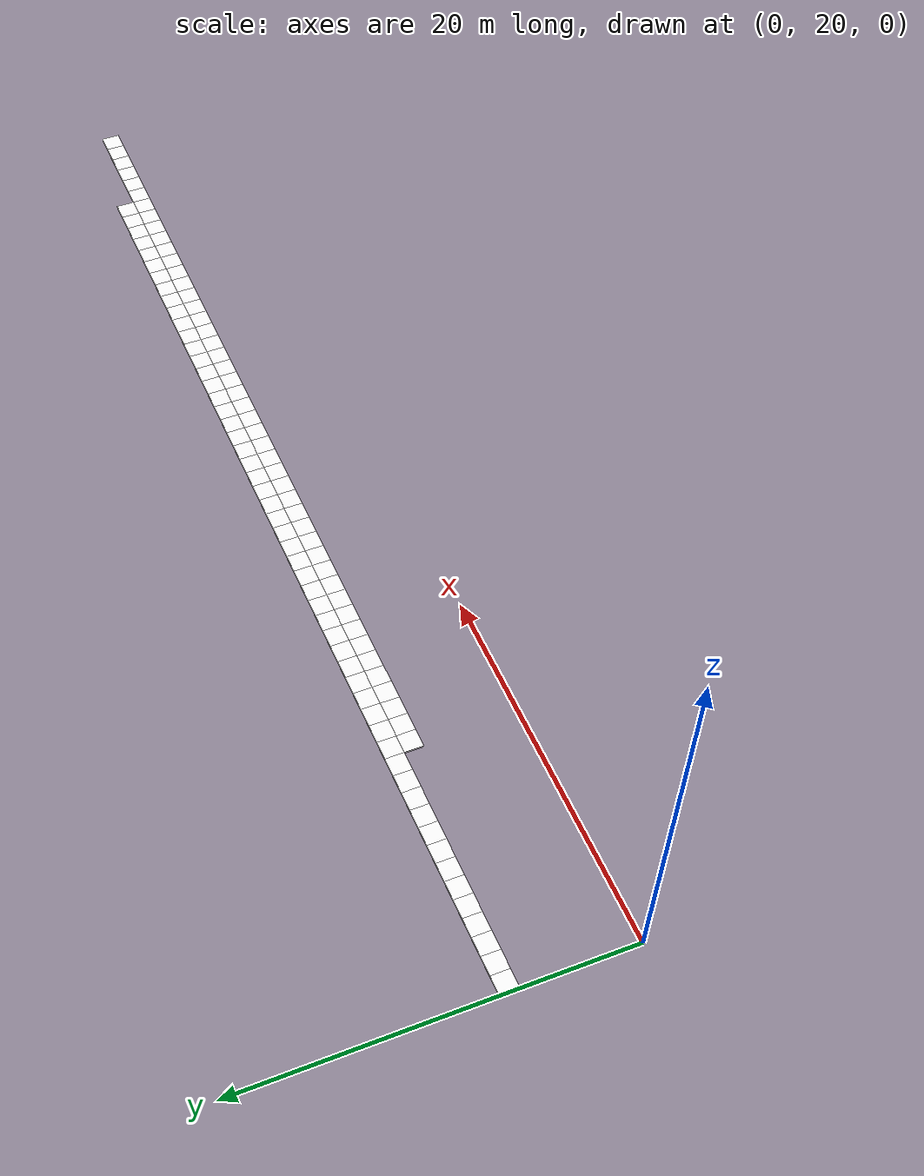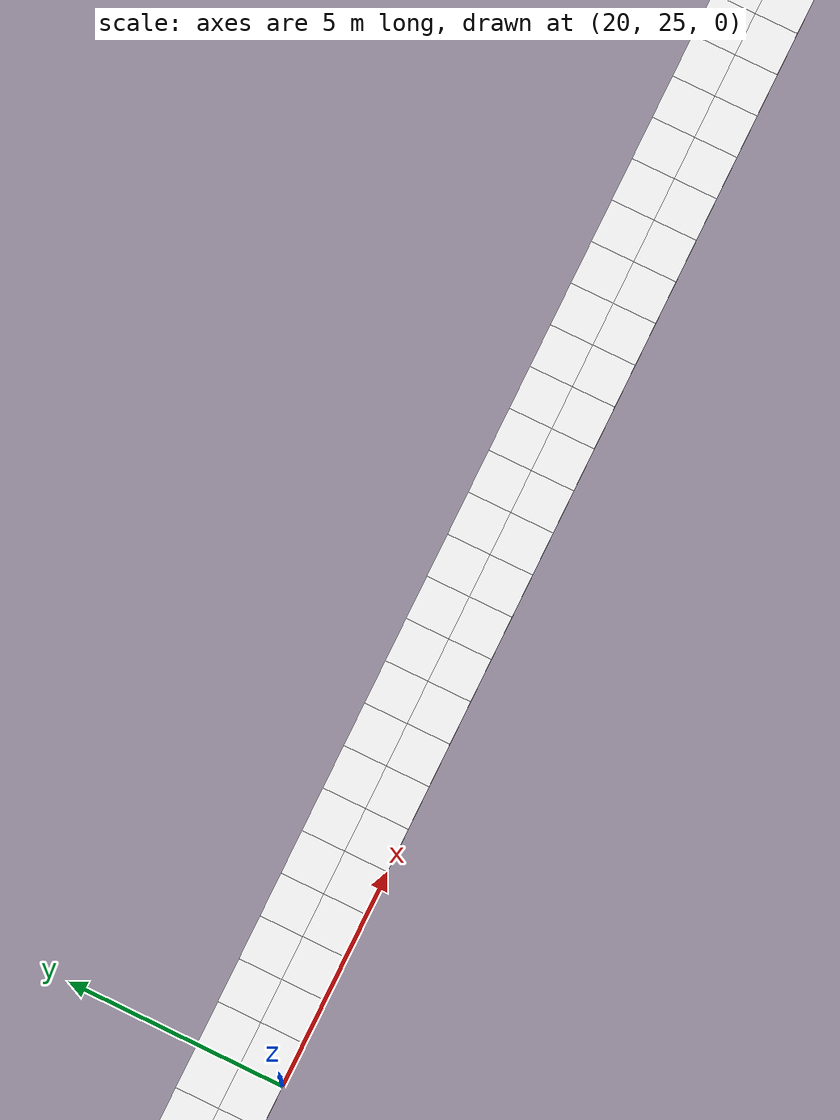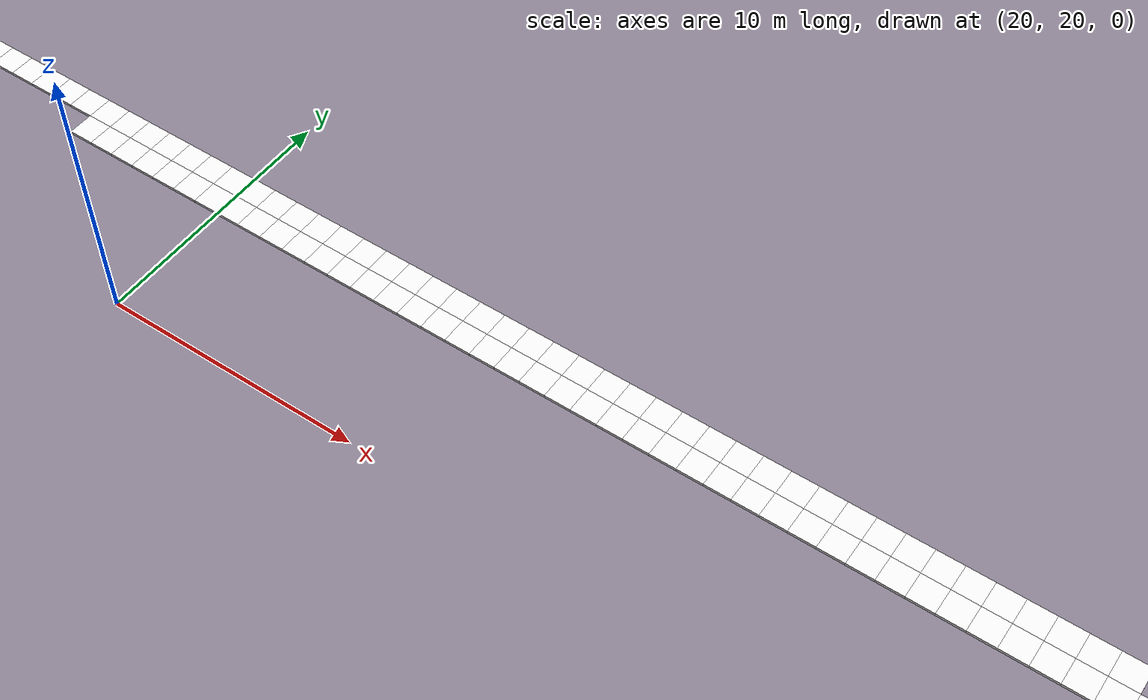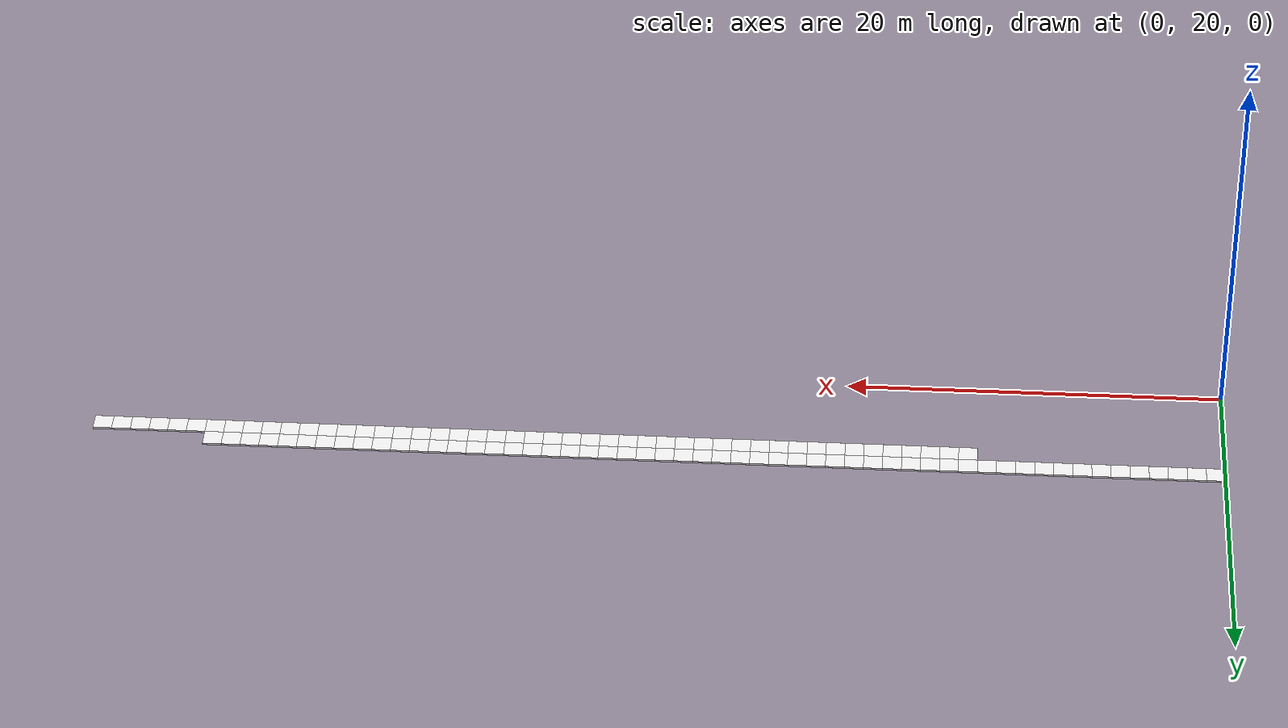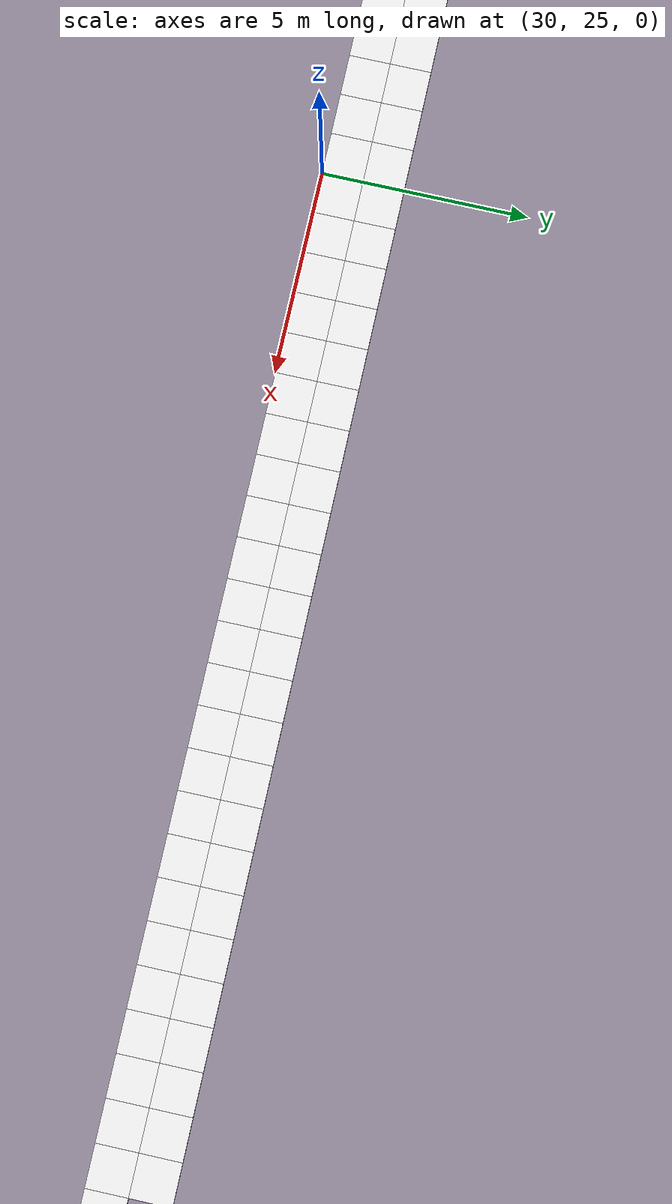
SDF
<sdf version="1.6">
 <world name="grid_world">
  <model name="cell_13_25">
   <static>true</static>
   <link name="link">
    <collision name="collision"><geometry><box><size>1 1 0.1</size></box></geometry></collision>
    <visual name="visual">
     <geometry><box><size>1 1 0.1</size></box></geometry>
     <material>
      <script><uri>file://media/materials/scripts/gazebo.material</uri><name>Gazebo/White</name></script>
     </material>
    </visual>
    <pose>13.5 25.5 0.05 0 0 0</pose>
   </link>
  </model>
  <model name="cell_14_25">
   <static>true</static>
   <link name="link">
    <collision name="collision"><geometry><box><size>1 1 0.1</size></box></geometry></collision>
    <visual name="visual">
     <geometry><box><size>1 1 0.1</size></box></geometry>
     <material>
      <script><uri>file://media/materials/scripts/gazebo.material</uri><name>Gazebo/White</name></script>
     </material>
    </visual>
    <pose>14.5 25.5 0.05 0 0 0</pose>
   </link>
  </model>
  <model name="cell_15_25">
   <static>true</static>
   <link name="link">
    <collision name="collision"><geometry><box><size>1 1 0.1</size></box></geometry></collision>
    <visual name="visual">
     <geometry><box><size>1 1 0.1</size></box></geometry>
     <material>
      <script><uri>file://media/materials/scripts/gazebo.material</uri><name>Gazebo/White</name></script>
     </material>
    </visual>
    <pose>15.5 25.5 0.05 0 0 0</pose>
   </link>
  </model>
  <model name="cell_16_25">
   <static>true</static>
   <link name="link">
    <collision name="collision"><geometry><box><size>1 1 0.1</size></box></geometry></collision>
    <visual name="visual">
     <geometry><box><size>1 1 0.1</size></box></geometry>
     <material>
      <script><uri>file://media/materials/scripts/gazebo.material</uri><name>Gazebo/White</name></script>
     </material>
    </visual>
    <pose>16.5 25.5 0.05 0 0 0</pose>
   </link>
  </model>
  <model name="cell_17_25">
   <static>true</static>
   <link name="link">
    <collision name="collision"><geometry><box><size>1 1 0.1</size></box></geometry></collision>
    <visual name="visual">
     <geometry><box><size>1 1 0.1</size></box></geometry>
     <material>
      <script><uri>file://media/materials/scripts/gazebo.material</uri><name>Gazebo/White</name></script>
     </material>
    </visual>
    <pose>17.5 25.5 0.05 0 0 0</pose>
   </link>
  </model>
  <model name="cell_18_25">
   <static>true</static>
   <link name="link">
    <collision name="collision"><geometry><box><size>1 1 0.1</size></box></geometry></collision>
    <visual name="visual">
     <geometry><box><size>1 1 0.1</size></box></geometry>
     <material>
      <script><uri>file://media/materials/scripts/gazebo.material</uri><name>Gazebo/White</name></script>
     </material>
    </visual>
    <pose>18.5 25.5 0.05 0 0 0</pose>
   </link>
  </model>
  <model name="cell_19_25">
   <static>true</static>
   <link name="link">
    <collision name="collision"><geometry><box><size>1 1 0.1</size></box></geometry></collision>
    <visual name="visual">
     <geometry><box><size>1 1 0.1</size></box></geometry>
     <material>
      <script><uri>file://media/materials/scripts/gazebo.material</uri><name>Gazebo/White</name></script>
     </material>
    </visual>
    <pose>19.5 25.5 0.05 0 0 0</pose>
   </link>
  </model>
  <model name="cell_20_25">
   <static>true</static>
   <link name="link">
    <collision name="collision"><geometry><box><size>1 1 0.1</size></box></geometry></collision>
    <visual name="visual">
     <geometry><box><size>1 1 0.1</size></box></geometry>
     <material>
      <script><uri>file://media/materials/scripts/gazebo.material</uri><name>Gazebo/White</name></script>
     </material>
    </visual>
    <pose>20.5 25.5 0.05 0 0 0</pose>
   </link>
  </model>
  <model name="cell_21_25">
   <static>true</static>
   <link name="link">
    <collision name="collision"><geometry><box><size>1 1 0.1</size></box></geometry></collision>
    <visual name="visual">
     <geometry><box><size>1 1 0.1</size></box></geometry>
     <material>
      <script><uri>file://media/materials/scripts/gazebo.material</uri><name>Gazebo/White</name></script>
     </material>
    </visual>
    <pose>21.5 25.5 0.05 0 0 0</pose>
   </link>
  </model>
  <model name="cell_22_25">
   <static>true</static>
   <link name="link">
    <collision name="collision"><geometry><box><size>1 1 0.1</size></box></geometry></collision>
    <visual name="visual">
     <geometry><box><size>1 1 0.1</size></box></geometry>
     <material>
      <script><uri>file://media/materials/scripts/gazebo.material</uri><name>Gazebo/White</name></script>
     </material>
    </visual>
    <pose>22.5 25.5 0.05 0 0 0</pose>
   </link>
  </model>
  <model name="cell_23_25">
   <static>true</static>
   <link name="link">
    <collision name="collision"><geometry><box><size>1 1 0.1</size></box></geometry></collision>
    <visual name="visual">
     <geometry><box><size>1 1 0.1</size></box></geometry>
     <material>
      <script><uri>file://media/materials/scripts/gazebo.material</uri><name>Gazebo/White</name></script>
     </material>
    </visual>
    <pose>23.5 25.5 0.05 0 0 0</pose>
   </link>
  </model>
  <model name="cell_24_25">
   <static>true</static>
   <link name="link">
    <collision name="collision"><geometry><box><size>1 1 0.1</size></box></geometry></collision>
    <visual name="visual">
     <geometry><box><size>1 1 0.1</size></box></geometry>
     <material>
      <script><uri>file://media/materials/scripts/gazebo.material</uri><name>Gazebo/White</name></script>
     </material>
    </visual>
    <pose>24.5 25.5 0.05 0 0 0</pose>
   </link>
  </model>
  <model name="cell_25_25">
   <static>true</static>
   <link name="link">
    <collision name="collision"><geometry><box><size>1 1 0.1</size></box></geometry></collision>
    <visual name="visual">
     <geometry><box><size>1 1 0.1</size></box></geometry>
     <material>
      <script><uri>file://media/materials/scripts/gazebo.material</uri><name>Gazebo/White</name></script>
     </material>
    </visual>
    <pose>25.5 25.5 0.05 0 0 0</pose>
   </link>
  </model>
  <model name="cell_26_25">
   <static>true</static>
   <link name="link">
    <collision name="collision"><geometry><box><size>1 1 0.1</size></box></geometry></collision>
    <visual name="visual">
     <geometry><box><size>1 1 0.1</size></box></geometry>
     <material>
      <script><uri>file://media/materials/scripts/gazebo.material</uri><name>Gazebo/White</name></script>
     </material>
    </visual>
    <pose>26.5 25.5 0.05 0 0 0</pose>
   </link>
  </model>
  <model name="cell_27_25">
   <static>true</static>
   <link name="link">
    <collision name="collision"><geometry><box><size>1 1 0.1</size></box></geometry></collision>
    <visual name="visual">
     <geometry><box><size>1 1 0.1</size></box></geometry>
     <material>
      <script><uri>file://media/materials/scripts/gazebo.material</uri><name>Gazebo/White</name></script>
     </material>
    </visual>
    <pose>27.5 25.5 0.05 0 0 0</pose>
   </link>
  </model>
  <model name="cell_28_25">
   <static>true</static>
   <link name="link">
    <collision name="collision"><geometry><box><size>1 1 0.1</size></box></geometry></collision>
    <visual name="visual">
     <geometry><box><size>1 1 0.1</size></box></geometry>
     <material>
      <script><uri>file://media/materials/scripts/gazebo.material</uri><name>Gazebo/White</name></script>
     </material>
    </visual>
    <pose>28.5 25.5 0.05 0 0 0</pose>
   </link>
  </model>
  <model name="cell_29_25">
   <static>true</static>
   <link name="link">
    <collision name="collision"><geometry><box><size>1 1 0.1</size></box></geometry></collision>
    <visual name="visual">
     <geometry><box><size>1 1 0.1</size></box></geometry>
     <material>
      <script><uri>file://media/materials/scripts/gazebo.material</uri><name>Gazebo/White</name></script>
     </material>
    </visual>
    <pose>29.5 25.5 0.05 0 0 0</pose>
   </link>
  </model>
  <model name="cell_30_25">
   <static>true</static>
   <link name="link">
    <collision name="collision"><geometry><box><size>1 1 0.1</size></box></geometry></collision>
    <visual name="visual">
     <geometry><box><size>1 1 0.1</size></box></geometry>
     <material>
      <script><uri>file://media/materials/scripts/gazebo.material</uri><name>Gazebo/White</name></script>
     </material>
    </visual>
    <pose>30.5 25.5 0.05 0 0 0</pose>
   </link>
  </model>
  <model name="cell_31_25">
   <static>true</static>
   <link name="link">
    <collision name="collision"><geometry><box><size>1 1 0.1</size></box></geometry></collision>
    <visual name="visual">
     <geometry><box><size>1 1 0.1</size></box></geometry>
     <material>
      <script><uri>file://media/materials/scripts/gazebo.material</uri><name>Gazebo/White</name></script>
     </material>
    </visual>
    <pose>31.5 25.5 0.05 0 0 0</pose>
   </link>
  </model>
  <model name="cell_32_25">
   <static>true</static>
   <link name="link">
    <collision name="collision"><geometry><box><size>1 1 0.1</size></box></geometry></collision>
    <visual name="visual">
     <geometry><box><size>1 1 0.1</size></box></geometry>
     <material>
      <script><uri>file://media/materials/scripts/gazebo.material</uri><name>Gazebo/White</name></script>
     </material>
    </visual>
    <pose>32.5 25.5 0.05 0 0 0</pose>
   </link>
  </model>
  <model name="cell_33_25">
   <static>true</static>
   <link name="link">
    <collision name="collision"><geometry><box><size>1 1 0.1</size></box></geometry></collision>
    <visual name="visual">
     <geometry><box><size>1 1 0.1</size></box></geometry>
     <material>
      <script><uri>file://media/materials/scripts/gazebo.material</uri><name>Gazebo/White</name></script>
     </material>
    </visual>
    <pose>33.5 25.5 0.05 0 0 0</pose>
   </link>
  </model>
  <model name="cell_34_25">
   <static>true</static>
   <link name="link">
    <collision name="collision"><geometry><box><size>1 1 0.1</size></box></geometry></collision>
    <visual name="visual">
     <geometry><box><size>1 1 0.1</size></box></geometry>
     <material>
      <script><uri>file://media/materials/scripts/gazebo.material</uri><name>Gazebo/White</name></script>
     </material>
    </visual>
    <pose>34.5 25.5 0.05 0 0 0</pose>
   </link>
  </model>
  <model name="cell_35_25">
   <static>true</static>
   <link name="link">
    <collision name="collision"><geometry><box><size>1 1 0.1</size></box></geometry></collision>
    <visual name="visual">
     <geometry><box><size>1 1 0.1</size></box></geometry>
     <material>
      <script><uri>file://media/materials/scripts/gazebo.material</uri><name>Gazebo/White</name></script>
     </material>
    </visual>
    <pose>35.5 25.5 0.05 0 0 0</pose>
   </link>
  </model>
  <model name="cell_36_25">
   <static>true</static>
   <link name="link">
    <collision name="collision"><geometry><box><size>1 1 0.1</size></box></geometry></collision>
    <visual name="visual">
     <geometry><box><size>1 1 0.1</size></box></geometry>
     <material>
      <script><uri>file://media/materials/scripts/gazebo.material</uri><name>Gazebo/White</name></script>
     </material>
    </visual>
    <pose>36.5 25.5 0.05 0 0 0</pose>
   </link>
  </model>
  <model name="cell_37_25">
   <static>true</static>
   <link name="link">
    <collision name="collision"><geometry><box><size>1 1 0.1</size></box></geometry></collision>
    <visual name="visual">
     <geometry><box><size>1 1 0.1</size></box></geometry>
     <material>
      <script><uri>file://media/materials/scripts/gazebo.material</uri><name>Gazebo/White</name></script>
     </material>
    </visual>
    <pose>37.5 25.5 0.05 0 0 0</pose>
   </link>
  </model>
  <model name="cell_38_25">
   <static>true</static>
   <link name="link">
    <collision name="collision"><geometry><box><size>1 1 0.1</size></box></geometry></collision>
    <visual name="visual">
     <geometry><box><size>1 1 0.1</size></box></geometry>
     <material>
      <script><uri>file://media/materials/scripts/gazebo.material</uri><name>Gazebo/White</name></script>
     </material>
    </visual>
    <pose>38.5 25.5 0.05 0 0 0</pose>
   </link>
  </model>
  <model name="cell_39_25">
   <static>true</static>
   <link name="link">
    <collision name="collision"><geometry><box><size>1 1 0.1</size></box></geometry></collision>
    <visual name="visual">
     <geometry><box><size>1 1 0.1</size></box></geometry>
     <material>
      <script><uri>file://media/materials/scripts/gazebo.material</uri><name>Gazebo/White</name></script>
     </material>
    </visual>
    <pose>39.5 25.5 0.05 0 0 0</pose>
   </link>
  </model>
  <model name="cell_40_25">
   <static>true</static>
   <link name="link">
    <collision name="collision"><geometry><box><size>1 1 0.1</size></box></geometry></collision>
    <visual name="visual">
     <geometry><box><size>1 1 0.1</size></box></geometry>
     <material>
      <script><uri>file://media/materials/scripts/gazebo.material</uri><name>Gazebo/White</name></script>
     </material>
    </visual>
    <pose>40.5 25.5 0.05 0 0 0</pose>
   </link>
  </model>
  <model name="cell_41_25">
   <static>true</static>
   <link name="link">
    <collision name="collision"><geometry><box><size>1 1 0.1</size></box></geometry></collision>
    <visual name="visual">
     <geometry><box><size>1 1 0.1</size></box></geometry>
     <material>
      <script><uri>file://media/materials/scripts/gazebo.material</uri><name>Gazebo/White</name></script>
     </material>
    </visual>
    <pose>41.5 25.5 0.05 0 0 0</pose>
   </link>
  </model>
  <model name="cell_42_25">
   <static>true</static>
   <link name="link">
    <collision name="collision"><geometry><box><size>1 1 0.1</size></box></geometry></collision>
    <visual name="visual">
     <geometry><box><size>1 1 0.1</size></box></geometry>
     <material>
      <script><uri>file://media/materials/scripts/gazebo.material</uri><name>Gazebo/White</name></script>
     </material>
    </visual>
    <pose>42.5 25.5 0.05 0 0 0</pose>
   </link>
  </model>
  <model name="cell_43_25">
   <static>true</static>
   <link name="link">
    <collision name="collision"><geometry><box><size>1 1 0.1</size></box></geometry></collision>
    <visual name="visual">
     <geometry><box><size>1 1 0.1</size></box></geometry>
     <material>
      <script><uri>file://media/materials/scripts/gazebo.material</uri><name>Gazebo/White</name></script>
     </material>
    </visual>
    <pose>43.5 25.5 0.05 0 0 0</pose>
   </link>
  </model>
  <model name="cell_44_25">
   <static>true</static>
   <link name="link">
    <collision name="collision"><geometry><box><size>1 1 0.1</size></box></geometry></collision>
    <visual name="visual">
     <geometry><box><size>1 1 0.1</size></box></geometry>
     <material>
      <script><uri>file://media/materials/scripts/gazebo.material</uri><name>Gazebo/White</name></script>
     </material>
    </visual>
    <pose>44.5 25.5 0.05 0 0 0</pose>
   </link>
  </model>
  <model name="cell_45_25">
   <static>true</static>
   <link name="link">
    <collision name="collision"><geometry><box><size>1 1 0.1</size></box></geometry></collision>
    <visual name="visual">
     <geometry><box><size>1 1 0.1</size></box></geometry>
     <material>
      <script><uri>file://media/materials/scripts/gazebo.material</uri><name>Gazebo/White</name></script>
     </material>
    </visual>
    <pose>45.5 25.5 0.05 0 0 0</pose>
   </link>
  </model>
  <model name="cell_46_25">
   <static>true</static>
   <link name="link">
    <collision name="collision"><geometry><box><size>1 1 0.1</size></box></geometry></collision>
    <visual name="visual">
     <geometry><box><size>1 1 0.1</size></box></geometry>
     <material>
      <script><uri>file://media/materials/scripts/gazebo.material</uri><name>Gazebo/White</name></script>
     </material>
    </visual>
    <pose>46.5 25.5 0.05 0 0 0</pose>
   </link>
  </model>
  <model name="cell_47_25">
   <static>true</static>
   <link name="link">
    <collision name="collision"><geometry><box><size>1 1 0.1</size></box></geometry></collision>
    <visual name="visual">
     <geometry><box><size>1 1 0.1</size></box></geometry>
     <material>
      <script><uri>file://media/materials/scripts/gazebo.material</uri><name>Gazebo/White</name></script>
     </material>
    </visual>
    <pose>47.5 25.5 0.05 0 0 0</pose>
   </link>
  </model>
  <model name="cell_48_25">
   <static>true</static>
   <link name="link">
    <collision name="collision"><geometry><box><size>1 1 0.1</size></box></geometry></collision>
    <visual name="visual">
     <geometry><box><size>1 1 0.1</size></box></geometry>
     <material>
      <script><uri>file://media/materials/scripts/gazebo.material</uri><name>Gazebo/White</name></script>
     </material>
    </visual>
    <pose>48.5 25.5 0.05 0 0 0</pose>
   </link>
  </model>
  <model name="cell_49_25">
   <static>true</static>
   <link name="link">
    <collision name="collision"><geometry><box><size>1 1 0.1</size></box></geometry></collision>
    <visual name="visual">
     <geometry><box><size>1 1 0.1</size></box></geometry>
     <material>
      <script><uri>file://media/materials/scripts/gazebo.material</uri><name>Gazebo/White</name></script>
     </material>
    </visual>
    <pose>49.5 25.5 0.05 0 0 0</pose>
   </link>
  </model>
  <model name="cell_50_25">
   <static>true</static>
   <link name="link">
    <collision name="collision"><geometry><box><size>1 1 0.1</size></box></geometry></collision>
    <visual name="visual">
     <geometry><box><size>1 1 0.1</size></box></geometry>
     <material>
      <script><uri>file://media/materials/scripts/gazebo.material</uri><name>Gazebo/White</name></script>
     </material>
    </visual>
    <pose>50.5 25.5 0.05 0 0 0</pose>
   </link>
  </model>
  <model name="cell_51_25">
   <static>true</static>
   <link name="link">
    <collision name="collision"><geometry><box><size>1 1 0.1</size></box></geometry></collision>
    <visual name="visual">
     <geometry><box><size>1 1 0.1</size></box></geometry>
     <material>
      <script><uri>file://media/materials/scripts/gazebo.material</uri><name>Gazebo/White</name></script>
     </material>
    </visual>
    <pose>51.5 25.5 0.05 0 0 0</pose>
   </link>
  </model>
  <model name="cell_52_25">
   <static>true</static>
   <link name="link">
    <collision name="collision"><geometry><box><size>1 1 0.1</size></box></geometry></collision>
    <visual name="visual">
     <geometry><box><size>1 1 0.1</size></box></geometry>
     <material>
      <script><uri>file://media/materials/scripts/gazebo.material</uri><name>Gazebo/White</name></script>
     </material>
    </visual>
    <pose>52.5 25.5 0.05 0 0 0</pose>
   </link>
  </model>
  <model name="cell_53_25">
   <static>true</static>
   <link name="link">
    <collision name="collision"><geometry><box><size>1 1 0.1</size></box></geometry></collision>
    <visual name="visual">
     <geometry><box><size>1 1 0.1</size></box></geometry>
     <material>
      <script><uri>file://media/materials/scripts/gazebo.material</uri><name>Gazebo/White</name></script>
     </material>
    </visual>
    <pose>53.5 25.5 0.05 0 0 0</pose>
   </link>
  </model>
  <model name="cell_54_25">
   <static>true</static>
   <link name="link">
    <collision name="collision"><geometry><box><size>1 1 0.1</size></box></geometry></collision>
    <visual name="visual">
     <geometry><box><size>1 1 0.1</size></box></geometry>
     <material>
      <script><uri>file://media/materials/scripts/gazebo.material</uri><name>Gazebo/White</name></script>
     </material>
    </visual>
    <pose>54.5 25.5 0.05 0 0 0</pose>
   </link>
  </model>
  <model name="cell_55_25">
   <static>true</static>
   <link name="link">
    <collision name="collision"><geometry><box><size>1 1 0.1</size></box></geometry></collision>
    <visual name="visual">
     <geometry><box><size>1 1 0.1</size></box></geometry>
     <material>
      <script><uri>file://media/materials/scripts/gazebo.material</uri><name>Gazebo/White</name></script>
     </material>
    </visual>
    <pose>55.5 25.5 0.05 0 0 0</pose>
   </link>
  </model>
  <model name="cell_56_25">
   <static>true</static>
   <link name="link">
    <collision name="collision"><geometry><box><size>1 1 0.1</size></box></geometry></collision>
    <visual name="visual">
     <geometry><box><size>1 1 0.1</size></box></geometry>
     <material>
      <script><uri>file://media/materials/scripts/gazebo.material</uri><name>Gazebo/White</name></script>
     </material>
    </visual>
    <pose>56.5 25.5 0.05 0 0 0</pose>
   </link>
  </model>
  <model name="cell_57_25">
   <static>true</static>
   <link name="link">
    <collision name="collision"><geometry><box><size>1 1 0.1</size></box></geometry></collision>
    <visual name="visual">
     <geometry><box><size>1 1 0.1</size></box></geometry>
     <material>
      <script><uri>file://media/materials/scripts/gazebo.material</uri><name>Gazebo/White</name></script>
     </material>
    </visual>
    <pose>57.5 25.5 0.05 0 0 0</pose>
   </link>
  </model>
  <model name="cell_58_25">
   <static>true</static>
   <link name="link">
    <collision name="collision"><geometry><box><size>1 1 0.1</size></box></geometry></collision>
    <visual name="visual">
     <geometry><box><size>1 1 0.1</size></box></geometry>
     <material>
      <script><uri>file://media/materials/scripts/gazebo.material</uri><name>Gazebo/White</name></script>
     </material>
    </visual>
    <pose>58.5 25.5 0.05 0 0 0</pose>
   </link>
  </model>
  <model name="cell_59_25">
   <static>true</static>
   <link name="link">
    <collision name="collision"><geometry><box><size>1 1 0.1</size></box></geometry></collision>
    <visual name="visual">
     <geometry><box><size>1 1 0.1</size></box></geometry>
     <material>
      <script><uri>file://media/materials/scripts/gazebo.material</uri><name>Gazebo/White</name></script>
     </material>
    </visual>
    <pose>59.5 25.5 0.05 0 0 0</pose>
   </link>
  </model>
  <model name="cell_0_26">
   <static>true</static>
   <link name="link">
    <collision name="collision"><geometry><box><size>1 1 0.1</size></box></geometry></collision>
    <visual name="visual">
     <geometry><box><size>1 1 0.1</size></box></geometry>
     <material>
      <script><uri>file://media/materials/scripts/gazebo.material</uri><name>Gazebo/White</name></script>
     </material>
    </visual>
    <pose>0.5 26.5 0.05 0 0 0</pose>
   </link>
  </model>
  <model name="cell_1_26">
   <static>true</static>
   <link name="link">
    <collision name="collision"><geometry><box><size>1 1 0.1</size></box></geometry></collision>
    <visual name="visual">
     <geometry><box><size>1 1 0.1</size></box></geometry>
     <material>
      <script><uri>file://media/materials/scripts/gazebo.material</uri><name>Gazebo/White</name></script>
     </material>
    </visual>
    <pose>1.5 26.5 0.05 0 0 0</pose>
   </link>
  </model>
  <model name="cell_2_26">
   <static>true</static>
   <link name="link">
    <collision name="collision"><geometry><box><size>1 1 0.1</size></box></geometry></collision>
    <visual name="visual">
     <geometry><box><size>1 1 0.1</size></box></geometry>
     <material>
      <script><uri>file://media/materials/scripts/gazebo.material</uri><name>Gazebo/White</name></script>
     </material>
    </visual>
    <pose>2.5 26.5 0.05 0 0 0</pose>
   </link>
  </model>
  <model name="cell_3_26">
   <static>true</static>
   <link name="link">
    <collision name="collision"><geometry><box><size>1 1 0.1</size></box></geometry></collision>
    <visual name="visual">
     <geometry><box><size>1 1 0.1</size></box></geometry>
     <material>
      <script><uri>file://media/materials/scripts/gazebo.material</uri><name>Gazebo/White</name></script>
     </material>
    </visual>
    <pose>3.5 26.5 0.05 0 0 0</pose>
   </link>
  </model>
  <model name="cell_4_26">
   <static>true</static>
   <link name="link">
    <collision name="collision"><geometry><box><size>1 1 0.1</size></box></geometry></collision>
    <visual name="visual">
     <geometry><box><size>1 1 0.1</size></box></geometry>
     <material>
      <script><uri>file://media/materials/scripts/gazebo.material</uri><name>Gazebo/White</name></script>
     </material>
    </visual>
    <pose>4.5 26.5 0.05 0 0 0</pose>
   </link>
  </model>
  <model name="cell_5_26">
   <static>true</static>
   <link name="link">
    <collision name="collision"><geometry><box><size>1 1 0.1</size></box></geometry></collision>
    <visual name="visual">
     <geometry><box><size>1 1 0.1</size></box></geometry>
     <material>
      <script><uri>file://media/materials/scripts/gazebo.material</uri><name>Gazebo/White</name></script>
     </material>
    </visual>
    <pose>5.5 26.5 0.05 0 0 0</pose>
   </link>
  </model>
  <model name="cell_6_26">
   <static>true</static>
   <link name="link">
    <collision name="collision"><geometry><box><size>1 1 0.1</size></box></geometry></collision>
    <visual name="visual">
     <geometry><box><size>1 1 0.1</size></box></geometry>
     <material>
      <script><uri>file://media/materials/scripts/gazebo.material</uri><name>Gazebo/White</name></script>
     </material>
    </visual>
    <pose>6.5 26.5 0.05 0 0 0</pose>
   </link>
  </model>
  <model name="cell_7_26">
   <static>true</static>
   <link name="link">
    <collision name="collision"><geometry><box><size>1 1 0.1</size></box></geometry></collision>
    <visual name="visual">
     <geometry><box><size>1 1 0.1</size></box></geometry>
     <material>
      <script><uri>file://media/materials/scripts/gazebo.material</uri><name>Gazebo/White</name></script>
     </material>
    </visual>
    <pose>7.5 26.5 0.05 0 0 0</pose>
   </link>
  </model>
  <model name="cell_8_26">
   <static>true</static>
   <link name="link">
    <collision name="collision"><geometry><box><size>1 1 0.1</size></box></geometry></collision>
    <visual name="visual">
     <geometry><box><size>1 1 0.1</size></box></geometry>
     <material>
      <script><uri>file://media/materials/scripts/gazebo.material</uri><name>Gazebo/White</name></script>
     </material>
    </visual>
    <pose>8.5 26.5 0.05 0 0 0</pose>
   </link>
  </model>
  <model name="cell_9_26">
   <static>true</static>
   <link name="link">
    <collision name="collision"><geometry><box><size>1 1 0.1</size></box></geometry></collision>
    <visual name="visual">
     <geometry><box><size>1 1 0.1</size></box></geometry>
     <material>
      <script><uri>file://media/materials/scripts/gazebo.material</uri><name>Gazebo/White</name></script>
     </material>
    </visual>
    <pose>9.5 26.5 0.05 0 0 0</pose>
   </link>
  </model>
  <model name="cell_10_26">
   <static>true</static>
   <link name="link">
    <collision name="collision"><geometry><box><size>1 1 0.1</size></box></geometry></collision>
    <visual name="visual">
     <geometry><box><size>1 1 0.1</size></box></geometry>
     <material>
      <script><uri>file://media/materials/scripts/gazebo.material</uri><name>Gazebo/White</name></script>
     </material>
    </visual>
    <pose>10.5 26.5 0.05 0 0 0</pose>
   </link>
  </model>
  <model name="cell_11_26">
   <static>true</static>
   <link name="link">
    <collision name="collision"><geometry><box><size>1 1 0.1</size></box></geometry></collision>
    <visual name="visual">
     <geometry><box><size>1 1 0.1</size></box></geometry>
     <material>
      <script><uri>file://media/materials/scripts/gazebo.material</uri><name>Gazebo/White</name></script>
     </material>
    </visual>
    <pose>11.5 26.5 0.05 0 0 0</pose>
   </link>
  </model>
  <model name="cell_12_26">
   <static>true</static>
   <link name="link">
    <collision name="collision"><geometry><box><size>1 1 0.1</size></box></geometry></collision>
    <visual name="visual">
     <geometry><box><size>1 1 0.1</size></box></geometry>
     <material>
      <script><uri>file://media/materials/scripts/gazebo.material</uri><name>Gazebo/White</name></script>
     </material>
    </visual>
    <pose>12.5 26.5 0.05 0 0 0</pose>
   </link>
  </model>
  <model name="cell_13_26">
   <static>true</static>
   <link name="link">
    <collision name="collision"><geometry><box><size>1 1 0.1</size></box></geometry></collision>
    <visual name="visual">
     <geometry><box><size>1 1 0.1</size></box></geometry>
     <material>
      <script><uri>file://media/materials/scripts/gazebo.material</uri><name>Gazebo/White</name></script>
     </material>
    </visual>
    <pose>13.5 26.5 0.05 0 0 0</pose>
   </link>
  </model>
  <model name="cell_14_26">
   <static>true</static>
   <link name="link">
    <collision name="collision"><geometry><box><size>1 1 0.1</size></box></geometry></collision>
    <visual name="visual">
     <geometry><box><size>1 1 0.1</size></box></geometry>
     <material>
      <script><uri>file://media/materials/scripts/gazebo.material</uri><name>Gazebo/White</name></script>
     </material>
    </visual>
    <pose>14.5 26.5 0.05 0 0 0</pose>
   </link>
  </model>
  <model name="cell_15_26">
   <static>true</static>
   <link name="link">
    <collision name="collision"><geometry><box><size>1 1 0.1</size></box></geometry></collision>
    <visual name="visual">
     <geometry><box><size>1 1 0.1</size></box></geometry>
     <material>
      <script><uri>file://media/materials/scripts/gazebo.material</uri><name>Gazebo/White</name></script>
     </material>
    </visual>
    <pose>15.5 26.5 0.05 0 0 0</pose>
   </link>
  </model>
  <model name="cell_16_26">
   <static>true</static>
   <link name="link">
    <collision name="collision"><geometry><box><size>1 1 0.1</size></box></geometry></collision>
    <visual name="visual">
     <geometry><box><size>1 1 0.1</size></box></geometry>
     <material>
      <script><uri>file://media/materials/scripts/gazebo.material</uri><name>Gazebo/White</name></script>
     </material>
    </visual>
    <pose>16.5 26.5 0.05 0 0 0</pose>
   </link>
  </model>
  <model name="cell_17_26">
   <static>true</static>
   <link name="link">
    <collision name="collision"><geometry><box><size>1 1 0.1</size></box></geometry></collision>
    <visual name="visual">
     <geometry><box><size>1 1 0.1</size></box></geometry>
     <material>
      <script><uri>file://media/materials/scripts/gazebo.material</uri><name>Gazebo/White</name></script>
     </material>
    </visual>
    <pose>17.5 26.5 0.05 0 0 0</pose>
   </link>
  </model>
  <model name="cell_18_26">
   <static>true</static>
   <link name="link">
    <collision name="collision"><geometry><box><size>1 1 0.1</size></box></geometry></collision>
    <visual name="visual">
     <geometry><box><size>1 1 0.1</size></box></geometry>
     <material>
      <script><uri>file://media/materials/scripts/gazebo.material</uri><name>Gazebo/White</name></script>
     </material>
    </visual>
    <pose>18.5 26.5 0.05 0 0 0</pose>
   </link>
  </model>
  <model name="cell_19_26">
   <static>true</static>
   <link name="link">
    <collision name="collision"><geometry><box><size>1 1 0.1</size></box></geometry></collision>
    <visual name="visual">
     <geometry><box><size>1 1 0.1</size></box></geometry>
     <material>
      <script><uri>file://media/materials/scripts/gazebo.material</uri><name>Gazebo/White</name></script>
     </material>
    </visual>
    <pose>19.5 26.5 0.05 0 0 0</pose>
   </link>
  </model>
  <model name="cell_20_26">
   <static>true</static>
   <link name="link">
    <collision name="collision"><geometry><box><size>1 1 0.1</size></box></geometry></collision>
    <visual name="visual">
     <geometry><box><size>1 1 0.1</size></box></geometry>
     <material>
      <script><uri>file://media/materials/scripts/gazebo.material</uri><name>Gazebo/White</name></script>
     </material>
    </visual>
    <pose>20.5 26.5 0.05 0 0 0</pose>
   </link>
  </model>
  <model name="cell_21_26">
   <static>true</static>
   <link name="link">
    <collision name="collision"><geometry><box><size>1 1 0.1</size></box></geometry></collision>
    <visual name="visual">
     <geometry><box><size>1 1 0.1</size></box></geometry>
     <material>
      <script><uri>file://media/materials/scripts/gazebo.material</uri><name>Gazebo/White</name></script>
     </material>
    </visual>
    <pose>21.5 26.5 0.05 0 0 0</pose>
   </link>
  </model>
  <model name="cell_22_26">
   <static>true</static>
   <link name="link">
    <collision name="collision"><geometry><box><size>1 1 0.1</size></box></geometry></collision>
    <visual name="visual">
     <geometry><box><size>1 1 0.1</size></box></geometry>
     <material>
      <script><uri>file://media/materials/scripts/gazebo.material</uri><name>Gazebo/White</name></script>
     </material>
    </visual>
    <pose>22.5 26.5 0.05 0 0 0</pose>
   </link>
  </model>
  <model name="cell_23_26">
   <static>true</static>
   <link name="link">
    <collision name="collision"><geometry><box><size>1 1 0.1</size></box></geometry></collision>
    <visual name="visual">
     <geometry><box><size>1 1 0.1</size></box></geometry>
     <material>
      <script><uri>file://media/materials/scripts/gazebo.material</uri><name>Gazebo/White</name></script>
     </material>
    </visual>
    <pose>23.5 26.5 0.05 0 0 0</pose>
   </link>
  </model>
  <model name="cell_24_26">
   <static>true</static>
   <link name="link">
    <collision name="collision"><geometry><box><size>1 1 0.1</size></box></geometry></collision>
    <visual name="visual">
     <geometry><box><size>1 1 0.1</size></box></geometry>
     <material>
      <script><uri>file://media/materials/scripts/gazebo.material</uri><name>Gazebo/White</name></script>
     </material>
    </visual>
    <pose>24.5 26.5 0.05 0 0 0</pose>
   </link>
  </model>
  <model name="cell_25_26">
   <static>true</static>
   <link name="link">
    <collision name="collision"><geometry><box><size>1 1 0.1</size></box></geometry></collision>
    <visual name="visual">
     <geometry><box><size>1 1 0.1</size></box></geometry>
     <material>
      <script><uri>file://media/materials/scripts/gazebo.material</uri><name>Gazebo/White</name></script>
     </material>
    </visual>
    <pose>25.5 26.5 0.05 0 0 0</pose>
   </link>
  </model>
  <model name="cell_26_26">
   <static>true</static>
   <link name="link">
    <collision name="collision"><geometry><box><size>1 1 0.1</size></box></geometry></collision>
    <visual name="visual">
     <geometry><box><size>1 1 0.1</size></box></geometry>
     <material>
      <script><uri>file://media/materials/scripts/gazebo.material</uri><name>Gazebo/White</name></script>
     </material>
    </visual>
    <pose>26.5 26.5 0.05 0 0 0</pose>
   </link>
  </model>
  <model name="cell_27_26">
   <static>true</static>
   <link name="link">
    <collision name="collision"><geometry><box><size>1 1 0.1</size></box></geometry></collision>
    <visual name="visual">
     <geometry><box><size>1 1 0.1</size></box></geometry>
     <material>
      <script><uri>file://media/materials/scripts/gazebo.material</uri><name>Gazebo/White</name></script>
     </material>
    </visual>
    <pose>27.5 26.5 0.05 0 0 0</pose>
   </link>
  </model>
  <model name="cell_28_26">
   <static>true</static>
   <link name="link">
    <collision name="collision"><geometry><box><size>1 1 0.1</size></box></geometry></collision>
    <visual name="visual">
     <geometry><box><size>1 1 0.1</size></box></geometry>
     <material>
      <script><uri>file://media/materials/scripts/gazebo.material</uri><name>Gazebo/White</name></script>
     </material>
    </visual>
    <pose>28.5 26.5 0.05 0 0 0</pose>
   </link>
  </model>
  <model name="cell_29_26">
   <static>true</static>
   <link name="link">
    <collision name="collision"><geometry><box><size>1 1 0.1</size></box></geometry></collision>
    <visual name="visual">
     <geometry><box><size>1 1 0.1</size></box></geometry>
     <material>
      <script><uri>file://media/materials/scripts/gazebo.material</uri><name>Gazebo/White</name></script>
     </material>
    </visual>
    <pose>29.5 26.5 0.05 0 0 0</pose>
   </link>
  </model>
  <model name="cell_30_26">
   <static>true</static>
   <link name="link">
    <collision name="collision"><geometry><box><size>1 1 0.1</size></box></geometry></collision>
    <visual name="visual">
     <geometry><box><size>1 1 0.1</size></box></geometry>
     <material>
      <script><uri>file://media/materials/scripts/gazebo.material</uri><name>Gazebo/White</name></script>
     </material>
    </visual>
    <pose>30.5 26.5 0.05 0 0 0</pose>
   </link>
  </model>
  <model name="cell_31_26">
   <static>true</static>
   <link name="link">
    <collision name="collision"><geometry><box><size>1 1 0.1</size></box></geometry></collision>
    <visual name="visual">
     <geometry><box><size>1 1 0.1</size></box></geometry>
     <material>
      <script><uri>file://media/materials/scripts/gazebo.material</uri><name>Gazebo/White</name></script>
     </material>
    </visual>
    <pose>31.5 26.5 0.05 0 0 0</pose>
   </link>
  </model>
  <model name="cell_32_26">
   <static>true</static>
   <link name="link">
    <collision name="collision"><geometry><box><size>1 1 0.1</size></box></geometry></collision>
    <visual name="visual">
     <geometry><box><size>1 1 0.1</size></box></geometry>
     <material>
      <script><uri>file://media/materials/scripts/gazebo.material</uri><name>Gazebo/White</name></script>
     </material>
    </visual>
    <pose>32.5 26.5 0.05 0 0 0</pose>
   </link>
  </model>
  <model name="cell_33_26">
   <static>true</static>
   <link name="link">
    <collision name="collision"><geometry><box><size>1 1 0.1</size></box></geometry></collision>
    <visual name="visual">
     <geometry><box><size>1 1 0.1</size></box></geometry>
     <material>
      <script><uri>file://media/materials/scripts/gazebo.material</uri><name>Gazebo/White</name></script>
     </material>
    </visual>
    <pose>33.5 26.5 0.05 0 0 0</pose>
   </link>
  </model>
  <model name="cell_34_26">
   <static>true</static>
   <link name="link">
    <collision name="collision"><geometry><box><size>1 1 0.1</size></box></geometry></collision>
    <visual name="visual">
     <geometry><box><size>1 1 0.1</size></box></geometry>
     <material>
      <script><uri>file://media/materials/scripts/gazebo.material</uri><name>Gazebo/White</name></script>
     </material>
    </visual>
    <pose>34.5 26.5 0.05 0 0 0</pose>
   </link>
  </model>
  <model name="cell_35_26">
   <static>true</static>
   <link name="link">
    <collision name="collision"><geometry><box><size>1 1 0.1</size></box></geometry></collision>
    <visual name="visual">
     <geometry><box><size>1 1 0.1</size></box></geometry>
     <material>
      <script><uri>file://media/materials/scripts/gazebo.material</uri><name>Gazebo/White</name></script>
     </material>
    </visual>
    <pose>35.5 26.5 0.05 0 0 0</pose>
   </link>
  </model>
  <model name="cell_36_26">
   <static>true</static>
   <link name="link">
    <collision name="collision"><geometry><box><size>1 1 0.1</size></box></geometry></collision>
    <visual name="visual">
     <geometry><box><size>1 1 0.1</size></box></geometry>
     <material>
      <script><uri>file://media/materials/scripts/gazebo.material</uri><name>Gazebo/White</name></script>
     </material>
    </visual>
    <pose>36.5 26.5 0.05 0 0 0</pose>
   </link>
  </model>
  <model name="cell_37_26">
   <static>true</static>
   <link name="link">
    <collision name="collision"><geometry><box><size>1 1 0.1</size></box></geometry></collision>
    <visual name="visual">
     <geometry><box><size>1 1 0.1</size></box></geometry>
     <material>
      <script><uri>file://media/materials/scripts/gazebo.material</uri><name>Gazebo/White</name></script>
     </material>
    </visual>
    <pose>37.5 26.5 0.05 0 0 0</pose>
   </link>
  </model>
  <model name="cell_38_26">
   <static>true</static>
   <link name="link">
    <collision name="collision"><geometry><box><size>1 1 0.1</size></box></geometry></collision>
    <visual name="visual">
     <geometry><box><size>1 1 0.1</size></box></geometry>
     <material>
      <script><uri>file://media/materials/scripts/gazebo.material</uri><name>Gazebo/White</name></script>
     </material>
    </visual>
    <pose>38.5 26.5 0.05 0 0 0</pose>
   </link>
  </model>
  <model name="cell_39_26">
   <static>true</static>
   <link name="link">
    <collision name="collision"><geometry><box><size>1 1 0.1</size></box></geometry></collision>
    <visual name="visual">
     <geometry><box><size>1 1 0.1</size></box></geometry>
     <material>
      <script><uri>file://media/materials/scripts/gazebo.material</uri><name>Gazebo/White</name></script>
     </material>
    </visual>
    <pose>39.5 26.5 0.05 0 0 0</pose>
   </link>
  </model>
  <model name="cell_40_26">
   <static>true</static>
   <link name="link">
    <collision name="collision"><geometry><box><size>1 1 0.1</size></box></geometry></collision>
    <visual name="visual">
     <geometry><box><size>1 1 0.1</size></box></geometry>
     <material>
      <script><uri>file://media/materials/scripts/gazebo.material</uri><name>Gazebo/White</name></script>
     </material>
    </visual>
    <pose>40.5 26.5 0.05 0 0 0</pose>
   </link>
  </model>
  <model name="cell_41_26">
   <static>true</static>
   <link name="link">
    <collision name="collision"><geometry><box><size>1 1 0.1</size></box></geometry></collision>
    <visual name="visual">
     <geometry><box><size>1 1 0.1</size></box></geometry>
     <material>
      <script><uri>file://media/materials/scripts/gazebo.material</uri><name>Gazebo/White</name></script>
     </material>
    </visual>
    <pose>41.5 26.5 0.05 0 0 0</pose>
   </link>
  </model>
  <model name="cell_42_26">
   <static>true</static>
   <link name="link">
    <collision name="collision"><geometry><box><size>1 1 0.1</size></box></geometry></collision>
    <visual name="visual">
     <geometry><box><size>1 1 0.1</size></box></geometry>
     <material>
      <script><uri>file://media/materials/scripts/gazebo.material</uri><name>Gazebo/White</name></script>
     </material>
    </visual>
    <pose>42.5 26.5 0.05 0 0 0</pose>
   </link>
  </model>
  <model name="cell_43_26">
   <static>true</static>
   <link name="link">
    <collision name="collision"><geometry><box><size>1 1 0.1</size></box></geometry></collision>
    <visual name="visual">
     <geometry><box><size>1 1 0.1</size></box></geometry>
     <material>
      <script><uri>file://media/materials/scripts/gazebo.material</uri><name>Gazebo/White</name></script>
     </material>
    </visual>
    <pose>43.5 26.5 0.05 0 0 0</pose>
   </link>
  </model>
  <model name="cell_44_26">
   <static>true</static>
   <link name="link">
    <collision name="collision"><geometry><box><size>1 1 0.1</size></box></geometry></collision>
    <visual name="visual">
     <geometry><box><size>1 1 0.1</size></box></geometry>
     <material>
      <script><uri>file://media/materials/scripts/gazebo.material</uri><name>Gazebo/White</name></script>
     </material>
    </visual>
    <pose>44.5 26.5 0.05 0 0 0</pose>
   </link>
  </model>
  <model name="cell_45_26">
   <static>true</static>
   <link name="link">
    <collision name="collision"><geometry><box><size>1 1 0.1</size></box></geometry></collision>
    <visual name="visual">
     <geometry><box><size>1 1 0.1</size></box></geometry>
     <material>
      <script><uri>file://media/materials/scripts/gazebo.material</uri><name>Gazebo/White</name></script>
     </material>
    </visual>
    <pose>45.5 26.5 0.05 0 0 0</pose>
   </link>
  </model>
  <model name="cell_46_26">
   <static>true</static>
   <link name="link">
    <collision name="collision"><geometry><box><size>1 1 0.1</size></box></geometry></collision>
    <visual name="visual">
     <geometry><box><size>1 1 0.1</size></box></geometry>
     <material>
      <script><uri>file://media/materials/scripts/gazebo.material</uri><name>Gazebo/White</name></script>
     </material>
    </visual>
    <pose>46.5 26.5 0.05 0 0 0</pose>
   </link>
  </model>
  <model name="cell_47_26">
   <static>true</static>
   <link name="link">
    <collision name="collision"><geometry><box><size>1 1 0.1</size></box></geometry></collision>
    <visual name="visual">
     <geometry><box><size>1 1 0.1</size></box></geometry>
     <material>
      <script><uri>file://media/materials/scripts/gazebo.material</uri><name>Gazebo/White</name></script>
     </material>
    </visual>
    <pose>47.5 26.5 0.05 0 0 0</pose>
   </link>
  </model>
  <model name="cell_48_26">
   <static>true</static>
   <link name="link">
    <collision name="collision"><geometry><box><size>1 1 0.1</size></box></geometry></collision>
    <visual name="visual">
     <geometry><box><size>1 1 0.1</size></box></geometry>
     <material>
      <script><uri>file://media/materials/scripts/gazebo.material</uri><name>Gazebo/White</name></script>
     </material>
    </visual>
    <pose>48.5 26.5 0.05 0 0 0</pose>
   </link>
  </model>
  <model name="cell_49_26">
   <static>true</static>
   <link name="link">
    <collision name="collision"><geometry><box><size>1 1 0.1</size></box></geometry></collision>
    <visual name="visual">
     <geometry><box><size>1 1 0.1</size></box></geometry>
     <material>
      <script><uri>file://media/materials/scripts/gazebo.material</uri><name>Gazebo/White</name></script>
     </material>
    </visual>
    <pose>49.5 26.5 0.05 0 0 0</pose>
   </link>
  </model>
  <model name="cell_50_26">
   <static>true</static>
   <link name="link">
    <collision name="collision"><geometry><box><size>1 1 0.1</size></box></geometry></collision>
    <visual name="visual">
     <geometry><box><size>1 1 0.1</size></box></geometry>
     <material>
      <script><uri>file://media/materials/scripts/gazebo.material</uri><name>Gazebo/White</name></script>
     </material>
    </visual>
    <pose>50.5 26.5 0.05 0 0 0</pose>
   </link>
  </model>
  <model name="cell_51_26">
   <static>true</static>
   <link name="link">
    <collision name="collision"><geometry><box><size>1 1 0.1</size></box></geometry></collision>
    <visual name="visual">
     <geometry><box><size>1 1 0.1</size></box></geometry>
     <material>
      <script><uri>file://media/materials/scripts/gazebo.material</uri><name>Gazebo/White</name></script>
     </material>
    </visual>
    <pose>51.5 26.5 0.05 0 0 0</pose>
   </link>
  </model>
  <model name="cell_52_26">
   <static>true</static>
   <link name="link">
    <collision name="collision"><geometry><box><size>1 1 0.1</size></box></geometry></collision>
    <visual name="visual">
     <geometry><box><size>1 1 0.1</size></box></geometry>
     <material>
      <script><uri>file://media/materials/scripts/gazebo.material</uri><name>Gazebo/White</name></script>
     </material>
    </visual>
    <pose>52.5 26.5 0.05 0 0 0</pose>
   </link>
  </model>
  <model name="cell_53_26">
   <static>true</static>
   <link name="link">
    <collision name="collision"><geometry><box><size>1 1 0.1</size></box></geometry></collision>
    <visual name="visual">
     <geometry><box><size>1 1 0.1</size></box></geometry>
     <material>
      <script><uri>file://media/materials/scripts/gazebo.material</uri><name>Gazebo/White</name></script>
     </material>
    </visual>
    <pose>53.5 26.5 0.05 0 0 0</pose>
   </link>
  </model>
 </world>
</sdf>
